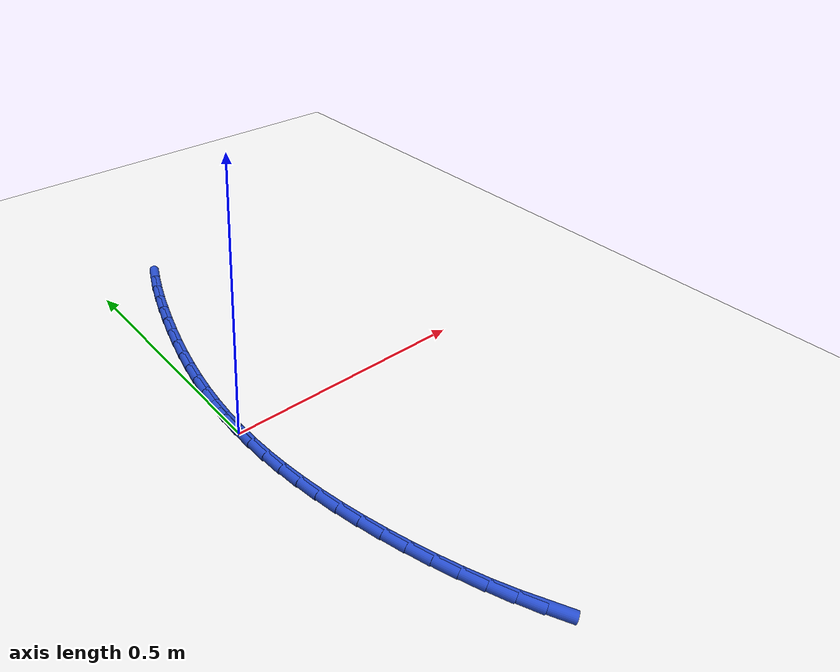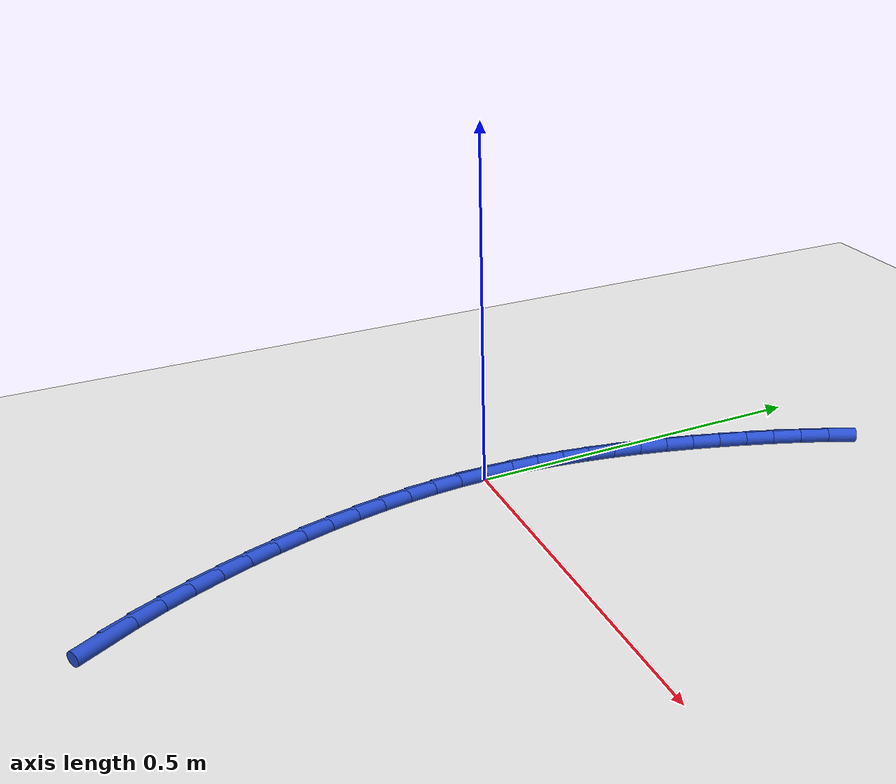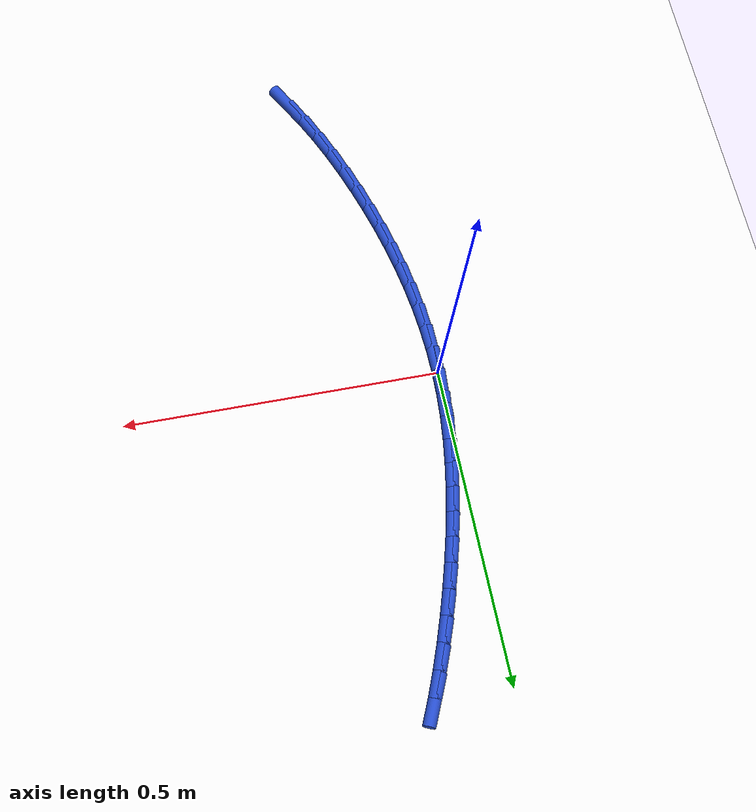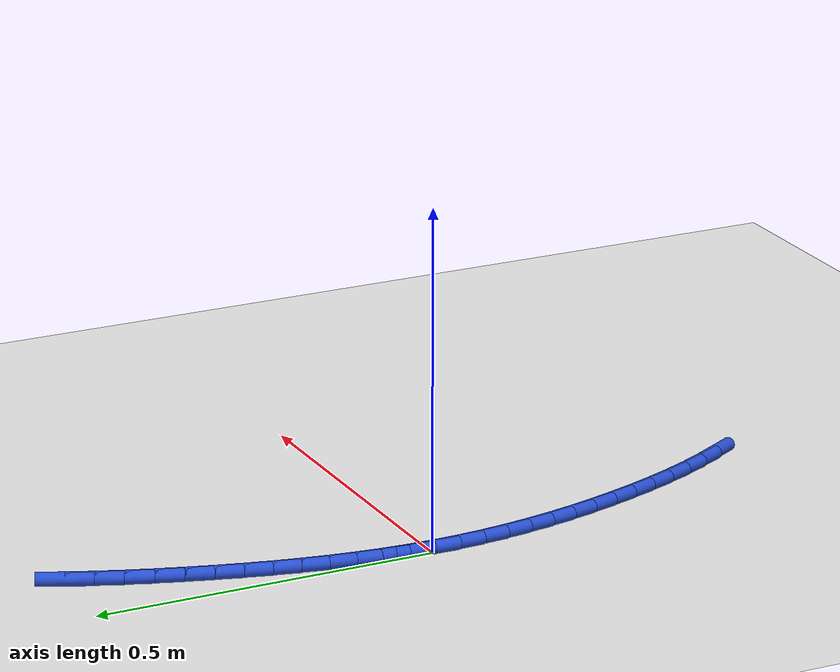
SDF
<sdf version="1.6">
 <world name="default">
  <model name="ground_plane">
   <static>1</static>
   <link name="link">
    <collision name="collision">
     <geometry><plane><normal>0 0 1</normal><size>100 100</size></plane></geometry>
     <surface><friction><ode><mu>100</mu><mu2>50</mu2></ode></friction></surface>
    </collision>
    <visual name="visual">
     <cast_shadows>0</cast_shadows>
     <geometry><plane><normal>0 0 1</normal><size>100 100</size></plane></geometry>
     <material>
      <script><uri>file://media/materials/scripts/gazebo.material</uri><name>Gazebo/WhiteGlow</name></script>
     </material>
    </visual>
   </link>
  </model>
  <model name="line">
   <link name="link_0">
    <pose>5.204170427930421e-18 -4.85722573273506e-17 0.01 0 1.57 1.5430698110290437</pose>
    <collision name="collision">
     <geometry><cylinder><radius>0.01</radius><length>0.08</length></cylinder></geometry>
    </collision>
    <visual name="visual">
     <material>
      <script><name>Gazebo/Blue</name><uri>file://media/materials/scripts/gazebo.material</uri></script>
     </material>
     <geometry><cylinder><radius>0.01</radius><length>0.08</length></cylinder></geometry>
    </visual>
   </link>
   <link name="link_1">
    <pose>0.0010610691072899844 0.038259303835031455 0.01 0 1.57 1.4999018727812456</pose>
    <collision name="collision">
     <geometry><cylinder><radius>0.01</radius><length>0.08</length></cylinder></geometry>
    </collision>
    <visual name="visual">
     <material>
      <script><name>Gazebo/Blue</name><uri>file://media/materials/scripts/gazebo.material</uri></script>
     </material>
     <geometry><cylinder><radius>0.01</radius><length>0.08</length></cylinder></geometry>
    </visual>
   </link>
   <link name="link_2">
    <pose>0.003774505061248298 0.07646946479422213 0.01 0 1.57 1.459412078133908</pose>
    <collision name="collision">
     <geometry><cylinder><radius>0.01</radius><length>0.08</length></cylinder></geometry>
    </collision>
    <visual name="visual">
     <material>
      <script><name>Gazebo/Blue</name><uri>file://media/materials/scripts/gazebo.material</uri></script>
     </material>
     <geometry><cylinder><radius>0.01</radius><length>0.08</length></cylinder></geometry>
    </visual>
   </link>
   <link name="link_3">
    <pose>0.008045083456441992 0.11465172947503895 0.01 0 1.57 1.421748723138477</pose>
    <collision name="collision">
     <geometry><cylinder><radius>0.01</radius><length>0.08</length></cylinder></geometry>
    </collision>
    <visual name="visual">
     <material>
      <script><name>Gazebo/Blue</name><uri>file://media/materials/scripts/gazebo.material</uri></script>
     </material>
     <geometry><cylinder><radius>0.01</radius><length>0.08</length></cylinder></geometry>
    </visual>
   </link>
   <link name="link_4">
    <pose>0.01377757988743812 0.1528273444749488 0.01 0 1.57 1.3870038572048446</pose>
    <collision name="collision">
     <geometry><cylinder><radius>0.01</radius><length>0.08</length></cylinder></geometry>
    </collision>
    <visual name="visual">
     <material>
      <script><name>Gazebo/Blue</name><uri>file://media/materials/scripts/gazebo.material</uri></script>
     </material>
     <geometry><cylinder><radius>0.01</radius><length>0.08</length></cylinder></geometry>
    </visual>
   </link>
   <link name="link_5">
    <pose>0.020876769948803737 0.1910175563914186 0.01 0 1.57 1.3552211961631595</pose>
    <collision name="collision">
     <geometry><cylinder><radius>0.01</radius><length>0.08</length></cylinder></geometry>
    </collision>
    <visual name="visual">
     <material>
      <script><name>Gazebo/Blue</name><uri>file://media/materials/scripts/gazebo.material</uri></script>
     </material>
     <geometry><cylinder><radius>0.01</radius><length>0.08</length></cylinder></geometry>
    </visual>
   </link>
   <link name="link_6">
    <pose>0.0292474292351059 0.22924361182191547 0.01 0 1.57 1.326404886494803</pose>
    <collision name="collision">
     <geometry><cylinder><radius>0.01</radius><length>0.08</length></cylinder></geometry>
    </collision>
    <visual name="visual">
     <material>
      <script><name>Gazebo/Blue</name><uri>file://media/materials/scripts/gazebo.material</uri></script>
     </material>
     <geometry><cylinder><radius>0.01</radius><length>0.08</length></cylinder></geometry>
    </visual>
   </link>
   <link name="link_7">
    <pose>0.03879433334091166 0.26752675736390624 0.01 0 1.57 1.300528253204703</pose>
    <collision name="collision">
     <geometry><cylinder><radius>0.01</radius><length>0.08</length></cylinder></geometry>
    </collision>
    <visual name="visual">
     <material>
      <script><name>Gazebo/Blue</name><uri>file://media/materials/scripts/gazebo.material</uri></script>
     </material>
     <geometry><cylinder><radius>0.01</radius><length>0.08</length></cylinder></geometry>
    </visual>
   </link>
   <link name="link_8">
    <pose>0.04942225786078808 0.3058882396148579 0.01 0 1.57 1.2775417288491522</pose>
    <collision name="collision">
     <geometry><cylinder><radius>0.01</radius><length>0.08</length></cylinder></geometry>
    </collision>
    <visual name="visual">
     <material>
      <script><name>Gazebo/Blue</name><uri>file://media/materials/scripts/gazebo.material</uri></script>
     </material>
     <geometry><cylinder><radius>0.01</radius><length>0.08</length></cylinder></geometry>
    </visual>
   </link>
   <link name="link_9">
    <pose>0.061035984458575575 0.34434929739520004 0.01 0 1.57 1.2562940148241608</pose>
    <collision name="collision">
     <geometry><cylinder><radius>0.01</radius><length>0.08</length></cylinder></geometry>
    </collision>
    <visual name="visual">
     <material>
      <script><name>Gazebo/Blue</name><uri>file://media/materials/scripts/gazebo.material</uri></script>
     </material>
     <geometry><cylinder><radius>0.01</radius><length>0.08</length></cylinder></geometry>
    </visual>
   </link>
   <link name="link_10">
    <pose>0.07357299745309168 0.38288926504176707 0.01 0 1.57 1.2330434593282864</pose>
    <collision name="collision">
     <geometry><cylinder><radius>0.01</radius><length>0.08</length></cylinder></geometry>
    </collision>
    <visual name="visual">
     <material>
      <script><name>Gazebo/Blue</name><uri>file://media/materials/scripts/gazebo.material</uri></script>
     </material>
     <geometry><cylinder><radius>0.01</radius><length>0.08</length></cylinder></geometry>
    </visual>
   </link>
   <link name="link_11">
    <pose>0.08707996216094537 0.4213475746928076 0.01 0 1.57 1.2068416024750563</pose>
    <collision name="collision">
     <geometry><cylinder><radius>0.01</radius><length>0.08</length></cylinder></geometry>
    </collision>
    <visual name="visual">
     <material>
      <script><name>Gazebo/Blue</name><uri>file://media/materials/scripts/gazebo.material</uri></script>
     </material>
     <geometry><cylinder><radius>0.01</radius><length>0.08</length></cylinder></geometry>
    </visual>
   </link>
   <link name="link_12">
    <pose>0.10162630159828318 0.4595344972564615 0.01 0 1.57 1.17745041678698</pose>
    <collision name="collision">
     <geometry><cylinder><radius>0.01</radius><length>0.08</length></cylinder></geometry>
    </collision>
    <visual name="visual">
     <material>
      <script><name>Gazebo/Blue</name><uri>file://media/materials/scripts/gazebo.material</uri></script>
     </material>
     <geometry><cylinder><radius>0.01</radius><length>0.08</length></cylinder></geometry>
    </visual>
   </link>
   <link name="link_13">
    <pose>0.11728143878125181 0.4972603036408692 0.01 0 1.57 1.1445913373499985</pose>
    <collision name="collision">
     <geometry><cylinder><radius>0.01</radius><length>0.08</length></cylinder></geometry>
    </collision>
    <visual name="visual">
     <material>
      <script><name>Gazebo/Blue</name><uri>file://media/materials/scripts/gazebo.material</uri></script>
     </material>
     <geometry><cylinder><radius>0.01</radius><length>0.08</length></cylinder></geometry>
    </visual>
   </link>
   <link name="link_166">
    <pose>0.1424342536568476 -0.5259476790442594 0.01 0 1.57 -1.060802692764384</pose>
    <collision name="collision">
     <geometry><cylinder><radius>0.01</radius><length>0.08</length></cylinder></geometry>
    </collision>
    <visual name="visual">
     <material>
      <script><name>Gazebo/Blue</name><uri>file://media/materials/scripts/gazebo.material</uri></script>
     </material>
     <geometry><cylinder><radius>0.01</radius><length>0.08</length></cylinder></geometry>
    </visual>
   </link>
   <link name="link_167">
    <pose>0.12319868347222829 -0.49155855260014525 0.01 0 1.57 -1.1107689453970515</pose>
    <collision name="collision">
     <geometry><cylinder><radius>0.01</radius><length>0.08</length></cylinder></geometry>
    </collision>
    <visual name="visual">
     <material>
      <script><name>Gazebo/Blue</name><uri>file://media/materials/scripts/gazebo.material</uri></script>
     </material>
     <geometry><cylinder><radius>0.01</radius><length>0.08</length></cylinder></geometry>
    </visual>
   </link>
   <link name="link_168">
    <pose>0.10554860149868447 -0.45593657056792974 0.01 0 1.57 -1.1547548456417078</pose>
    <collision name="collision">
     <geometry><cylinder><radius>0.01</radius><length>0.08</length></cylinder></geometry>
    </collision>
    <visual name="visual">
     <material>
      <script><name>Gazebo/Blue</name><uri>file://media/materials/scripts/gazebo.material</uri></script>
     </material>
     <geometry><cylinder><radius>0.01</radius><length>0.08</length></cylinder></geometry>
    </visual>
   </link>
   <link name="link_169">
    <pose>0.08938144176377656 -0.4193454564379765 0.01 0 1.57 -1.1933402024608013</pose>
    <collision name="collision">
     <geometry><cylinder><radius>0.01</radius><length>0.08</length></cylinder></geometry>
    </collision>
    <visual name="visual">
     <material>
      <script><name>Gazebo/Blue</name><uri>file://media/materials/scripts/gazebo.material</uri></script>
     </material>
     <geometry><cylinder><radius>0.01</radius><length>0.08</length></cylinder></geometry>
    </visual>
   </link>
   <link name="link_170">
    <pose>0.07459463829506456 -0.3820489337006478 0.01 0 1.57 -1.2270421300843835</pose>
    <collision name="collision">
     <geometry><cylinder><radius>0.01</radius><length>0.08</length></cylinder></geometry>
    </collision>
    <visual name="visual">
     <material>
      <script><name>Gazebo/Blue</name><uri>file://media/materials/scripts/gazebo.material</uri></script>
     </material>
     <geometry><cylinder><radius>0.01</radius><length>0.08</length></cylinder></geometry>
    </visual>
   </link>
   <link name="link_171">
    <pose>0.061085625120109434 -0.3443107258463087 0.01 0 1.57 -1.2571071636152298</pose>
    <collision name="collision">
     <geometry><cylinder><radius>0.01</radius><length>0.08</length></cylinder></geometry>
    </collision>
    <visual name="visual">
     <material>
      <script><name>Gazebo/Blue</name><uri>file://media/materials/scripts/gazebo.material</uri></script>
     </material>
     <geometry><cylinder><radius>0.01</radius><length>0.08</length></cylinder></geometry>
    </visual>
   </link>
   <link name="link_172">
    <pose>0.04877495872417433 -0.3063616976415691 0.01 0 1.57 -1.287674233755473</pose>
    <collision name="collision">
     <geometry><cylinder><radius>0.01</radius><length>0.08</length></cylinder></geometry>
    </collision>
    <visual name="visual">
     <material>
      <script><name>Gazebo/Blue</name><uri>file://media/materials/scripts/gazebo.material</uri></script>
     </material>
     <geometry><cylinder><radius>0.01</radius><length>0.08</length></cylinder></geometry>
    </visual>
   </link>
   <link name="link_173">
    <pose>0.03769412653258776 -0.26827507277690466 0.01 0 1.57 -1.319993369881521</pose>
    <collision name="collision">
     <geometry><cylinder><radius>0.01</radius><length>0.08</length></cylinder></geometry>
    </collision>
    <visual name="visual">
     <material>
      <script><name>Gazebo/Blue</name><uri>file://media/materials/scripts/gazebo.material</uri></script>
     </material>
     <geometry><cylinder><radius>0.01</radius><length>0.08</length></cylinder></geometry>
    </visual>
   </link>
   <link name="link_174">
    <pose>0.027907842780586594 -0.2300768571867045 0.01 0 1.57 -1.3541319920451536</pose>
    <collision name="collision">
     <geometry><cylinder><radius>0.01</radius><length>0.08</length></cylinder></geometry>
    </collision>
    <visual name="visual">
     <material>
      <script><name>Gazebo/Blue</name><uri>file://media/materials/scripts/gazebo.material</uri></script>
     </material>
     <geometry><cylinder><radius>0.01</radius><length>0.08</length></cylinder></geometry>
    </visual>
   </link>
   <link name="link_175">
    <pose>0.01948082786995882 -0.19179304804223196 0.01 0 1.57 -1.3901477734849845</pose>
    <collision name="collision">
     <geometry><cylinder><radius>0.01</radius><length>0.08</length></cylinder></geometry>
    </collision>
    <visual name="visual">
     <material>
      <script><name>Gazebo/Blue</name><uri>file://media/materials/scripts/gazebo.material</uri></script>
     </material>
     <geometry><cylinder><radius>0.01</radius><length>0.08</length></cylinder></geometry>
    </visual>
   </link>
   <link name="link_176">
    <pose>0.012477802202492281 -0.15344964251474952 0.01 0 1.57 -1.4280851024214178</pose>
    <collision name="collision">
     <geometry><cylinder><radius>0.01</radius><length>0.08</length></cylinder></geometry>
    </collision>
    <visual name="visual">
     <material>
      <script><name>Gazebo/Blue</name><uri>file://media/materials/scripts/gazebo.material</uri></script>
     </material>
     <geometry><cylinder><radius>0.01</radius><length>0.08</length></cylinder></geometry>
    </visual>
   </link>
   <link name="link_177">
    <pose>0.006963486179975237 -0.11507263777552224 0.01 0 1.57 -1.4679708229390953</pose>
    <collision name="collision">
     <geometry><cylinder><radius>0.01</radius><length>0.08</length></cylinder></geometry>
    </collision>
    <visual name="visual">
     <material>
      <script><name>Gazebo/Blue</name><uri>file://media/materials/scripts/gazebo.material</uri></script>
     </material>
     <geometry><cylinder><radius>0.01</radius><length>0.08</length></cylinder></geometry>
    </visual>
   </link>
   <link name="link_178">
    <pose>0.003002600204195526 -0.0766880309958126 0.01 0 1.57 -1.50980958361312</pose>
    <collision name="collision">
     <geometry><cylinder><radius>0.01</radius><length>0.08</length></cylinder></geometry>
    </collision>
    <visual name="visual">
     <material>
      <script><name>Gazebo/Blue</name><uri>file://media/materials/scripts/gazebo.material</uri></script>
     </material>
     <geometry><cylinder><radius>0.01</radius><length>0.08</length></cylinder></geometry>
    </visual>
   </link>
   <link name="link_179">
    <pose>0.0006598646769411147 -0.03832181934688403 0.01 0 1.57 -1.5535789951484087</pose>
    <collision name="collision">
     <geometry><cylinder><radius>0.01</radius><length>0.08</length></cylinder></geometry>
    </collision>
    <visual name="visual">
     <material>
      <script><name>Gazebo/Blue</name><uri>file://media/materials/scripts/gazebo.material</uri></script>
     </material>
     <geometry><cylinder><radius>0.01</radius><length>0.08</length></cylinder></geometry>
    </visual>
   </link>
   <link name="link_180">
    <pose>-1.0408340855860843e-17 1.1796119636642288e-16 0.01 0 1.57 1.542367754704087</pose>
    <collision name="collision">
     <geometry><cylinder><radius>0.01</radius><length>0.08</length></cylinder></geometry>
    </collision>
    <visual name="visual">
     <material>
      <script><name>Gazebo/Blue</name><uri>file://media/materials/scripts/gazebo.material</uri></script>
     </material>
     <geometry><cylinder><radius>0.01</radius><length>0.08</length></cylinder></geometry>
    </visual>
   </link>
   <link name="link_181">
    <pose>0.0010877265751601285 0.038251429873576465 0.01 0 1.57 1.5423677547040875</pose>
    <collision name="collision">
     <geometry><cylinder><radius>0.01</radius><length>0.08</length></cylinder></geometry>
    </collision>
    <visual name="visual">
     <material>
      <script><name>Gazebo/Blue</name><uri>file://media/materials/scripts/gazebo.material</uri></script>
     </material>
     <geometry><cylinder><radius>0.01</radius><length>0.08</length></cylinder></geometry>
    </visual>
   </link>
  </model>
 </world>
</sdf>
